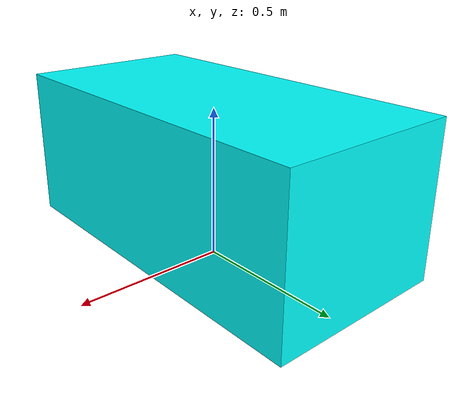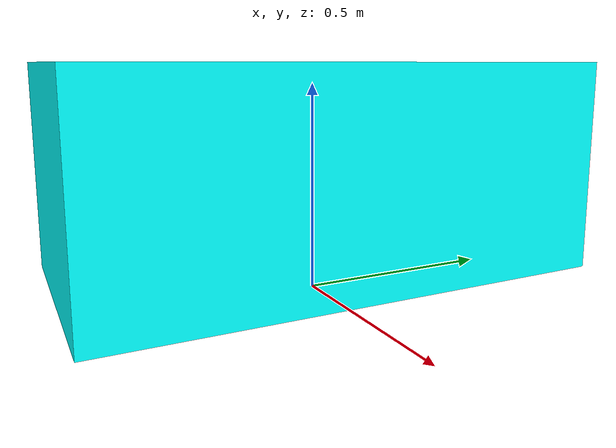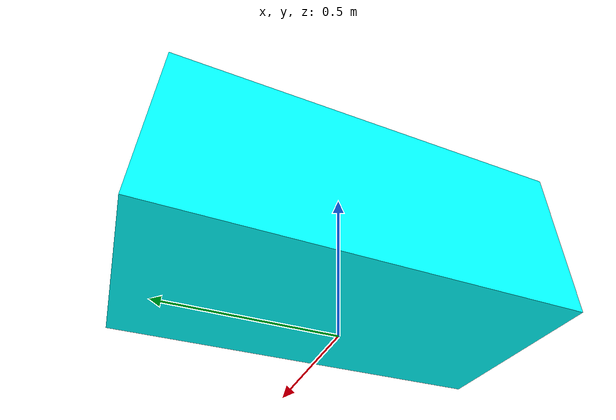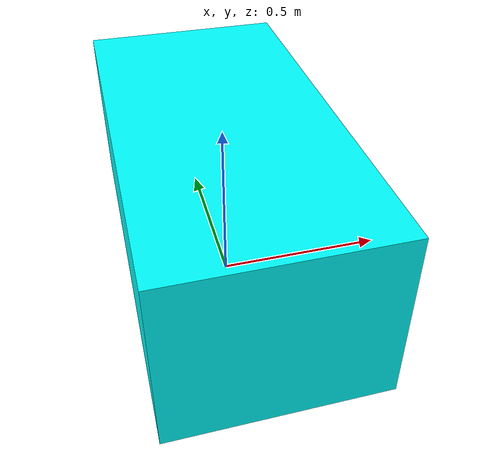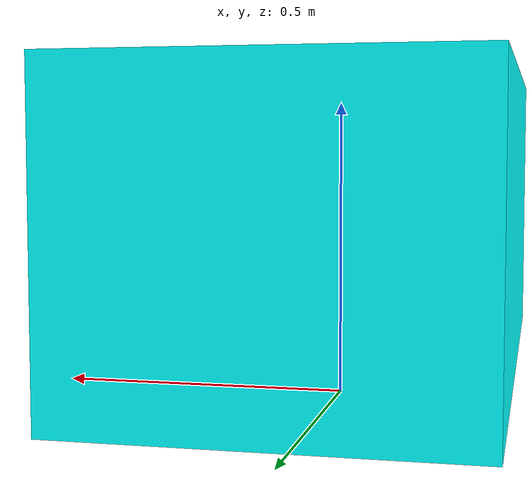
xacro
<?xml version="1.0"?>
<robot xmlns:xacro="http://www.ros.org/wiki/xacro">

    <!-- Test Bench Properties-->
    <xacro:property name="bench_width" value="1.2"/>
    <xacro:property name="bench_length" value=".6"/>
    <xacro:property name="bench_height" value=".5"/>

    <xacro:property name="wheel_radius" value="0.10"/>
    <xacro:property name="wheel_width" value="0.04"/>
    <xacro:property name="wheel_offset" value=".1"/>

    <!-- Bench Base-->
    <link name="base_link">

    </link>

    <!-- Bench Footprint-->
    <link name="bench_footprint" type="fixed">
        <visual>
            <geometry>
                <box size="${bench_length} ${bench_width} ${bench_height}"/>
            </geometry>
            <material name="Cyan">
                <color rgba="0 1.0 1.0 1.0"/>
            </material>
        </visual>
    </link>
    <joint name="bench_joint" type="fixed">
        <parent link="base_link"/>
        <child link="bench_footprint"/>
        <origin xyz="0.0 0.0 ${(wheel_radius*2+wheel_offset)}" rpy="0 0 0"/>
    </joint>

</robot>
